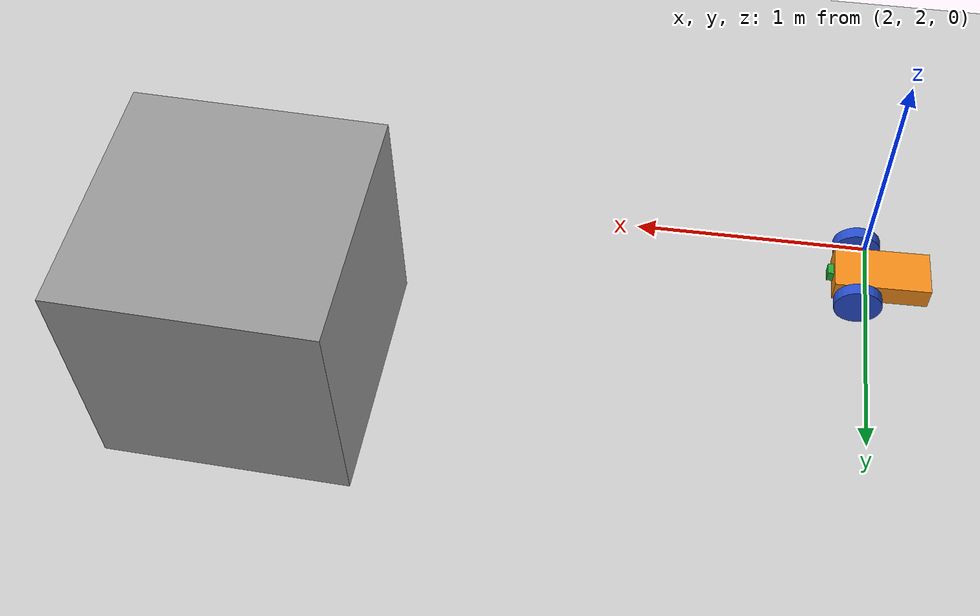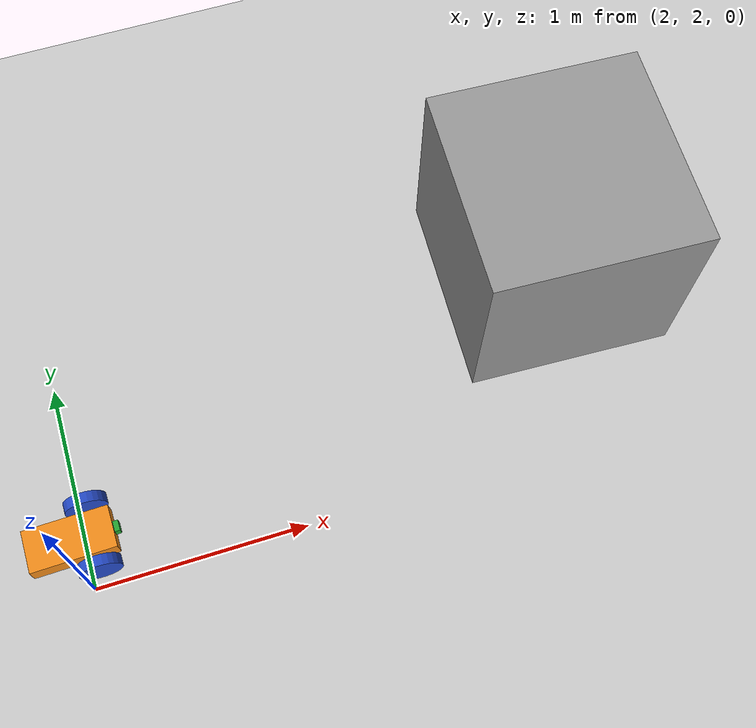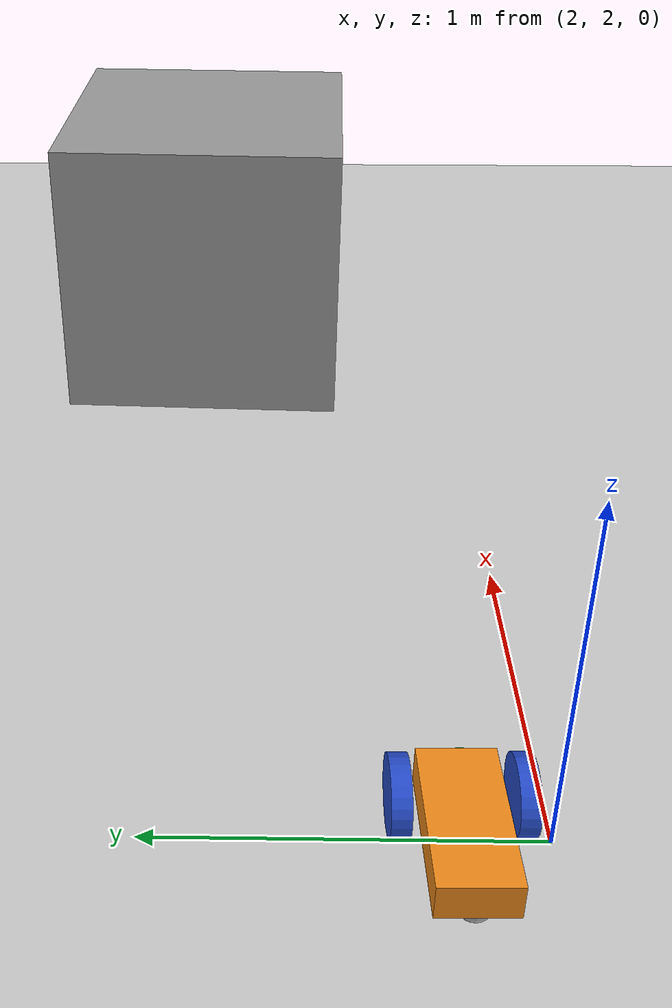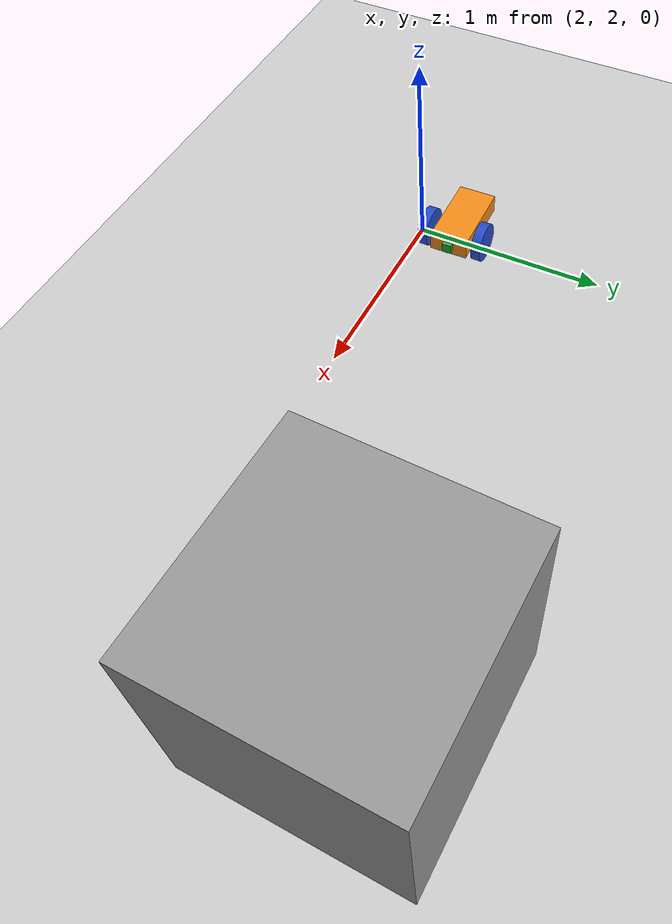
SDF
<sdf version="1.6">
 <world name="default">
  <model name="ground_plane">
   <static>1</static>
   <link name="link">
    <collision name="collision">
     <geometry><plane><normal>0 0 1</normal><size>100 100</size></plane></geometry>
     <surface>
      <contact><collide_bitmask>65535</collide_bitmask></contact>
      <friction><ode><mu>100</mu><mu2>50</mu2></ode></friction>
     </surface>
    </collision>
    <visual name="visual">
     <cast_shadows>0</cast_shadows>
     <geometry><plane><normal>0 0 1</normal><size>100 100</size></plane></geometry>
     <material>
      <script><uri>file://media/materials/scripts/gazebo.material</uri><name>Gazebo/Grey</name></script>
     </material>
    </visual>
   </link>
  </model>
  <gravity>0 0 -9.8</gravity>
  <magnetic_field>6e-06 2.3e-05 -4.2e-05</magnetic_field>
  <atmosphere type="adiabatic"/>
  <physics name="default_physics" default="0" type="ode">
   <max_step_size>0.001</max_step_size>
   <real_time_factor>1</real_time_factor>
   <real_time_update_rate>1000</real_time_update_rate>
  </physics>
  <scene><ambient>0.4 0.4 0.4 1</ambient><background>0.7 0.7 0.7 1</background><shadows>1</shadows></scene>
  <audio><device>default</device></audio>
  <spherical_coordinates>
   <surface_model>EARTH_WGS84</surface_model>
   <latitude_deg>0</latitude_deg>
   <longitude_deg>0</longitude_deg>
   <elevation>0</elevation>
   <heading_deg>0</heading_deg>
  </spherical_coordinates>
  <model name="mybot">
   <link name="chassis">
    <inertial>
     <pose>0.00198 0 0.09901 0 -0 0</pose>
     <mass>10.1</mass>
     <inertia>
      <ixx>0.500992</ixx>
      <ixy>0</ixy>
      <ixz>0.0019802</ixz>
      <iyy>1.00495</iyy>
      <iyz>0</iyz>
      <izz>0.103963</izz>
     </inertia>
    </inertial>
    <collision name="chassis_fixed_joint_lump__collision_collision">
     <geometry><box><size>0.4 0.2 0.1</size></box></geometry>
    </collision>
    <collision name="chassis_fixed_joint_lump__caster_collision_collision_1">
     <pose>-0.15 0 -0.05 0 -0 0</pose>
     <geometry><sphere><radius>0.05</radius></sphere></geometry>
    </collision>
    <collision name="chassis_fixed_joint_lump__camera_collision_2">
     <pose>0.2 0 0 0 -0 0</pose>
     <geometry><box><size>0.05 0.05 0.05</size></box></geometry>
    </collision>
    <visual name="chassis_visual_visual">
     <geometry><box><size>0.4 0.2 0.1</size></box></geometry>
     <material>
      <script><name>Gazebo/Orange</name><uri>file://media/materials/scripts/gazebo.material</uri></script>
     </material>
    </visual>
    <visual name="chassis_fixed_joint_lump__caster_visual_visual_1">
     <pose>-0.15 0 -0.05 0 -0 0</pose>
     <geometry><sphere><radius>0.05</radius></sphere></geometry>
    </visual>
    <visual name="chassis_fixed_joint_lump__camera_visual_2">
     <pose>0.2 0 0 0 -0 0</pose>
     <geometry><box><size>0.05 0.05 0.05</size></box></geometry>
     <material>
      <script><name>Gazebo/Green</name><uri>file://media/materials/scripts/gazebo.material</uri></script>
     </material>
    </visual>
    <sensor name="camera1" type="camera">
     <update_rate>30</update_rate>
     <camera name="head">
      <horizontal_fov>1.39626</horizontal_fov>
      <image><width>800</width><height>800</height><format>R8G8B8</format></image>
      <clip><near>0.02</near><far>300</far></clip>
     </camera>
     <plugin name="camera_controller" filename="libgazebo_ros_camera.so">
      <alwaysOn>1</alwaysOn>
      <updateRate>0.0</updateRate>
      <cameraName>mybot/camera1</cameraName>
      <imageTopicName>image_raw</imageTopicName>
      <cameraInfoTopicName>camera_info</cameraInfoTopicName>
      <frameName>camera_link_optical</frameName>
      <hackBaseline>0.07</hackBaseline>
      <distortionK1>0.0</distortionK1>
      <distortionK2>0.0</distortionK2>
      <distortionK3>0.0</distortionK3>
      <distortionT1>0.0</distortionT1>
      <distortionT2>0.0</distortionT2>
      <robotNamespace>/</robotNamespace>
     </plugin>
     <pose>0.2 0 0 0 -0 0</pose>
    </sensor>
   </link>
   <link name="left_wheel">
    <pose>0.1 0.15 0 0 -0 0</pose>
    <inertial>
     <pose>0 0 0 -0 1.5707 1.5707</pose>
     <mass>5</mass>
     <inertia><ixx>1</ixx><ixy>0</ixy><ixz>0</ixz><iyy>1</iyy><iyz>0</iyz><izz>1</izz></inertia>
    </inertial>
    <collision name="left_wheel_fixed_joint_lump__collision_collision">
     <pose>0 0 0 3.14159 1.57079 -1.57089</pose>
     <geometry><cylinder><length>0.05</length><radius>0.1</radius></cylinder></geometry>
    </collision>
    <visual name="left_wheel_visual_visual">
     <pose>0 0 0 3.14159 1.57079 -1.57089</pose>
     <geometry><cylinder><length>0.05</length><radius>0.1</radius></cylinder></geometry>
     <material>
      <script><name>Gazebo/Blue</name><uri>file://media/materials/scripts/gazebo.material</uri></script>
     </material>
    </visual>
   </link>
   <joint name="left_wheel_hinge" type="revolute">
    <child>left_wheel</child>
    <parent>chassis</parent>
    <axis>
     <xyz>0 1 0</xyz>
     <limit><lower>-1e+16</lower><upper>1e+16</upper></limit>
     <dynamics><spring_reference>0</spring_reference><spring_stiffness>0</spring_stiffness></dynamics>
     <use_parent_model_frame>1</use_parent_model_frame>
    </axis>
   </joint>
   <link name="right_wheel">
    <pose>0.1 -0.15 0 0 -0 0</pose>
    <inertial>
     <pose>0 0 0 -0 1.5707 1.5707</pose>
     <mass>5</mass>
     <inertia><ixx>1</ixx><ixy>0</ixy><ixz>0</ixz><iyy>1</iyy><iyz>0</iyz><izz>1</izz></inertia>
    </inertial>
    <collision name="right_wheel_fixed_joint_lump__collision_collision">
     <pose>0 0 0 3.14159 1.57079 -1.57089</pose>
     <geometry><cylinder><length>0.05</length><radius>0.1</radius></cylinder></geometry>
    </collision>
    <visual name="right_wheel_visual_visual">
     <pose>0 0 0 3.14159 1.57079 -1.57089</pose>
     <geometry><cylinder><length>0.05</length><radius>0.1</radius></cylinder></geometry>
     <material>
      <script><name>Gazebo/Blue</name><uri>file://media/materials/scripts/gazebo.material</uri></script>
     </material>
    </visual>
   </link>
   <joint name="right_wheel_hinge" type="revolute">
    <child>right_wheel</child>
    <parent>chassis</parent>
    <axis>
     <xyz>0 1 0</xyz>
     <limit><lower>-1e+16</lower><upper>1e+16</upper></limit>
     <dynamics><spring_reference>0</spring_reference><spring_stiffness>0</spring_stiffness></dynamics>
     <use_parent_model_frame>1</use_parent_model_frame>
    </axis>
   </joint>
   <static>0</static>
   <plugin name="differential_drive_controller" filename="libgazebo_ros_diff_drive.so">
    <legacyMode>0</legacyMode>
    <alwaysOn>1</alwaysOn>
    <updateRate>20</updateRate>
    <leftJoint>left_wheel_hinge</leftJoint>
    <rightJoint>right_wheel_hinge</rightJoint>
    <wheelSeparation>0.3</wheelSeparation>
    <wheelDiameter>0.2</wheelDiameter>
    <torque>20</torque>
    <commandTopic>cmd_vel</commandTopic>
    <odometryTopic>odom</odometryTopic>
    <odometryFrame>odom</odometryFrame>
    <robotBaseFrame>chassis</robotBaseFrame>
    <robotNamespace>/</robotNamespace>
   </plugin>
   <pose>1.95185 2.21697 0.099999 -1e-06 5e-06 0.019728</pose>
  </model>
  <model name="unit_box">
   <pose>4.48004 2.92657 0.499995 -1e-05 -0 -0.03958</pose>
   <link name="link">
    <inertial>
     <mass>1</mass>
     <inertia>
      <ixx>0.166667</ixx>
      <ixy>0</ixy>
      <ixz>0</ixz>
      <iyy>0.166667</iyy>
      <iyz>0</iyz>
      <izz>0.166667</izz>
     </inertia>
    </inertial>
    <collision name="collision"><geometry><box><size>1 1 1</size></box></geometry></collision>
    <visual name="visual">
     <geometry><box><size>1 1 1</size></box></geometry>
     <material>
      <script><name>Gazebo/Grey</name><uri>file://media/materials/scripts/gazebo.material</uri></script>
     </material>
    </visual>
   </link>
  </model>
  <light name="user_point_light_0" type="point">
   <pose>1.41766 3.13761 1 0 -0 0</pose>
   <diffuse>0.5 0.5 0.5 1</diffuse>
   <specular>0.1 0.1 0.1 1</specular>
   <attenuation>
    <range>20</range>
    <constant>0.5</constant>
    <linear>0.01</linear>
    <quadratic>0.001</quadratic>
   </attenuation>
   <cast_shadows>0</cast_shadows>
   <direction>0 0 -1</direction>
  </light>
 </world>
</sdf>
